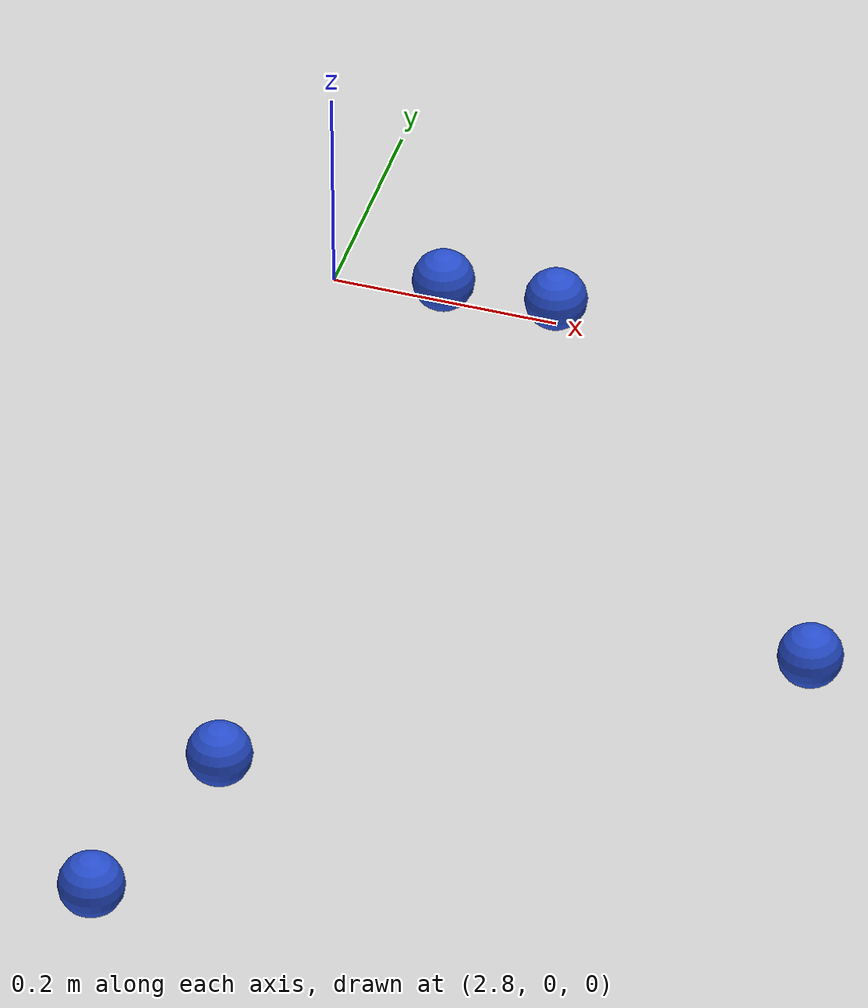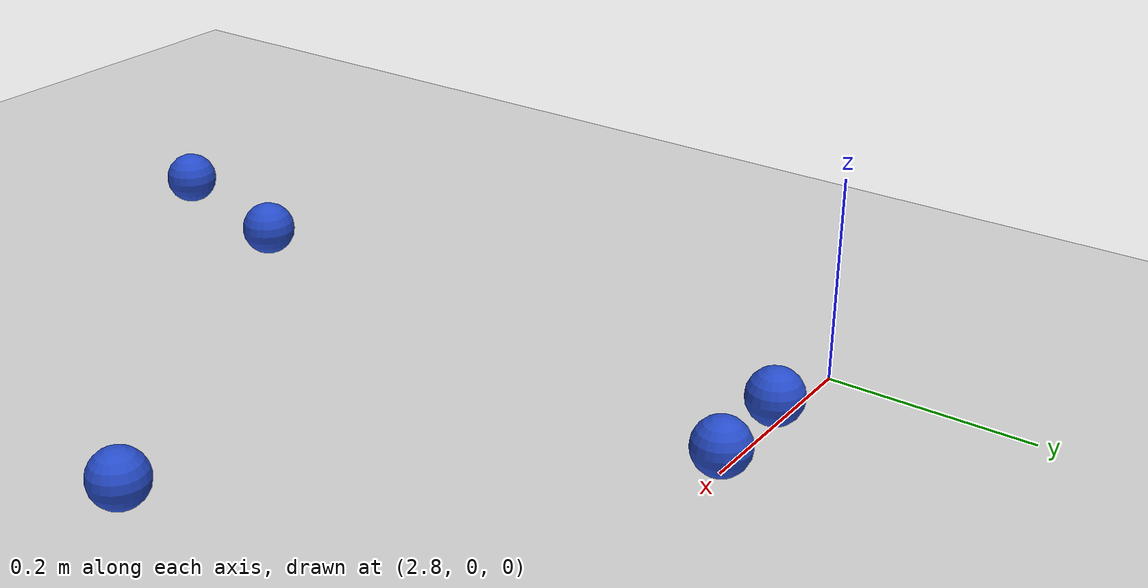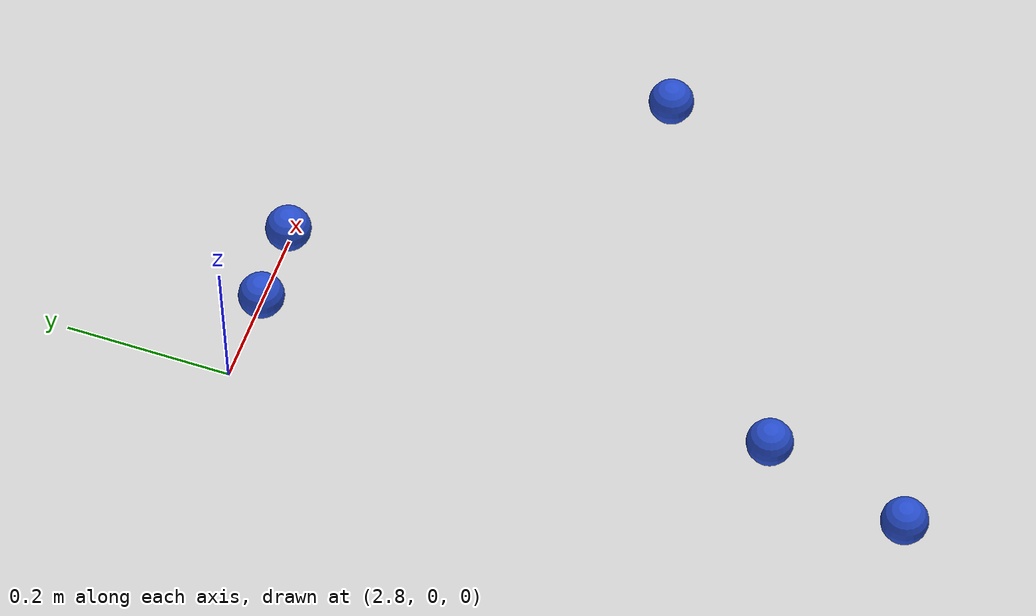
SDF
<sdf version="1.7">
 <world name="default">
  <model name="ground_plane">
   <static>1</static>
   <link name="link">
    <collision name="collision">
     <geometry><plane><normal>0 0 1</normal><size>100 100</size></plane></geometry>
     <surface>
      <contact><collide_bitmask>65535</collide_bitmask></contact>
      <friction><ode><mu>100</mu><mu2>50</mu2></ode></friction>
     </surface>
    </collision>
    <visual name="visual">
     <cast_shadows>0</cast_shadows>
     <geometry><plane><normal>0 0 1</normal><size>100 100</size></plane></geometry>
     <material>
      <script><uri>file://media/materials/scripts/gazebo.material</uri><name>Gazebo/Grey</name></script>
     </material>
    </visual>
   </link>
  </model>
  <model name="YellowBall">
   <link name="ball">
    <inertial>
     <mass>0.01</mass>
     <inertia>
      <ixx>3.02e-06</ixx>
      <ixy>0</ixy>
      <ixz>0</ixz>
      <iyy>3.02e-06</iyy>
      <iyz>0</iyz>
      <izz>3.02e-06</izz>
     </inertia>
    </inertial>
    <visual name="ball_visual">
     <geometry><sphere><radius>0.0275</radius></sphere></geometry>
     <material>
      <script><name>Gazebo/Blue</name><uri>file://media/materials/scripts/gazebo.material</uri></script>
      <shader type="pixel"><normal_map>__default__</normal_map></shader>
      <ambient>0.6 0.6 0 0</ambient>
      <diffuse>0.7 0.6 0.1 1</diffuse>
      <specular>0.7 1 0.8 1</specular>
      <emissive>0 0 0 1</emissive>
     </material>
    </visual>
    <collision name="ball_collision">
     <geometry><sphere><radius>0.0275</radius></sphere></geometry>
     <surface>
      <friction>
       <ode><mu>0.08</mu><mu2>0.08</mu2><fdir1>0 0 0</fdir1><slip1>0</slip1><slip2>0</slip2></ode>
       <torsional>
        <coefficient>1</coefficient>
        <patch_radius>0</patch_radius>
        <surface_radius>0</surface_radius>
        <use_patch_radius>1</use_patch_radius>
        <ode><slip>0</slip></ode>
       </torsional>
      </friction>
      <bounce><restitution_coefficient>0</restitution_coefficient><threshold>1e+06</threshold></bounce>
      <contact>
       <collide_without_contact>0</collide_without_contact>
       <collide_without_contact_bitmask>1</collide_without_contact_bitmask>
       <collide_bitmask>1</collide_bitmask>
       <ode>
        <soft_cfm>0</soft_cfm>
        <soft_erp>0.2</soft_erp>
        <kp>1e+13</kp>
        <kd>1</kd>
        <max_vel>0.01</max_vel>
        <min_depth>0</min_depth>
       </ode>
       <bullet>
        <split_impulse>1</split_impulse>
        <split_impulse_penetration_threshold>-0.01</split_impulse_penetration_threshold>
        <soft_cfm>0</soft_cfm>
        <soft_erp>0.2</soft_erp>
        <kp>1e+13</kp>
        <kd>1</kd>
       </bullet>
      </contact>
     </surface>
    </collision>
   </link>
   <static>0</static>
   <pose>3.32534 -0.37109 0.0275 0 -0 0</pose>
  </model>
  <model name="ball2_clone_clone">
   <link name="ball">
    <inertial>
     <mass>0.01</mass>
     <inertia>
      <ixx>3.025e-06</ixx>
      <ixy>0</ixy>
      <ixz>0</ixz>
      <iyy>3.025e-06</iyy>
      <iyz>0</iyz>
      <izz>3.025e-06</izz>
     </inertia>
    </inertial>
    <collision name="ball_collision">
     <geometry><sphere><radius>0.0275</radius></sphere></geometry>
     <surface><friction><ode><mu>0.08</mu><mu2>0.08</mu2></ode></friction></surface>
    </collision>
    <visual name="ball_visual">
     <geometry><sphere><radius>0.0275</radius></sphere></geometry>
     <material>
      <script><name>Gazebo/Blue</name><uri>file://media/materials/scripts/gazebo.material</uri></script>
     </material>
    </visual>
   </link>
   <pose>2.90006 -0.003891 0.0275 0 -0 0</pose>
  </model>
  <model name="YellowBall_clone_0">
   <link name="ball">
    <inertial>
     <mass>0.01</mass>
     <inertia>
      <ixx>3.02e-06</ixx>
      <ixy>0</ixy>
      <ixz>0</ixz>
      <iyy>3.02e-06</iyy>
      <iyz>0</iyz>
      <izz>3.02e-06</izz>
     </inertia>
    </inertial>
    <visual name="ball_visual">
     <geometry><sphere><radius>0.0275</radius></sphere></geometry>
     <material>
      <script><name>Gazebo/Blue</name><uri>file://media/materials/scripts/gazebo.material</uri></script>
      <shader type="pixel"><normal_map>__default__</normal_map></shader>
      <ambient>0.6 0.6 0 0</ambient>
      <diffuse>0.7 0.6 0.1 1</diffuse>
      <specular>0.7 1 0.8 1</specular>
      <emissive>0 0 0 1</emissive>
     </material>
    </visual>
    <collision name="ball_collision">
     <geometry><sphere><radius>0.0275</radius></sphere></geometry>
     <surface>
      <friction>
       <ode><mu>0.08</mu><mu2>0.08</mu2><fdir1>0 0 0</fdir1><slip1>0</slip1><slip2>0</slip2></ode>
       <torsional>
        <coefficient>1</coefficient>
        <patch_radius>0</patch_radius>
        <surface_radius>0</surface_radius>
        <use_patch_radius>1</use_patch_radius>
        <ode><slip>0</slip></ode>
       </torsional>
      </friction>
      <bounce><restitution_coefficient>0</restitution_coefficient><threshold>1e+06</threshold></bounce>
      <contact>
       <collide_without_contact>0</collide_without_contact>
       <collide_without_contact_bitmask>1</collide_without_contact_bitmask>
       <collide_bitmask>1</collide_bitmask>
       <ode>
        <soft_cfm>0</soft_cfm>
        <soft_erp>0.2</soft_erp>
        <kp>1e+13</kp>
        <kd>1</kd>
        <max_vel>0.01</max_vel>
        <min_depth>0</min_depth>
       </ode>
       <bullet>
        <split_impulse>1</split_impulse>
        <split_impulse_penetration_threshold>-0.01</split_impulse_penetration_threshold>
        <soft_cfm>0</soft_cfm>
        <soft_erp>0.2</soft_erp>
        <kp>1e+13</kp>
        <kd>1</kd>
       </bullet>
      </contact>
     </surface>
    </collision>
   </link>
   <static>0</static>
   <pose>2.8975 -0.621193 0.0275 0 -0 0</pose>
  </model>
  <model name="CyanBall_clone">
   <link name="ball">
    <inertial>
     <mass>0.01</mass>
     <inertia>
      <ixx>3.02e-06</ixx>
      <ixy>0</ixy>
      <ixz>0</ixz>
      <iyy>3.02e-06</iyy>
      <iyz>0</iyz>
      <izz>3.02e-06</izz>
     </inertia>
    </inertial>
    <visual name="ball_visual">
     <geometry><sphere><radius>0.0275</radius></sphere></geometry>
     <material>
      <script><name>Gazebo/Blue</name><uri>file://media/materials/scripts/gazebo.material</uri></script>
      <shader type="pixel"><normal_map>__default__</normal_map></shader>
      <ambient>0.1 0.8 0.8 0</ambient>
      <diffuse>0 0.6 0.6 1</diffuse>
      <specular>0.1 0.4 0.5 1</specular>
      <emissive>0 0 0 1</emissive>
     </material>
    </visual>
    <collision name="ball_collision">
     <geometry><sphere><radius>0.0275</radius></sphere></geometry>
     <surface>
      <friction>
       <ode><mu>0.08</mu><mu2>0.08</mu2><fdir1>0 0 0</fdir1><slip1>0</slip1><slip2>0</slip2></ode>
       <torsional>
        <coefficient>1</coefficient>
        <patch_radius>0</patch_radius>
        <surface_radius>0</surface_radius>
        <use_patch_radius>1</use_patch_radius>
        <ode><slip>0</slip></ode>
       </torsional>
      </friction>
      <bounce><restitution_coefficient>0</restitution_coefficient><threshold>1e+06</threshold></bounce>
      <contact>
       <collide_without_contact>0</collide_without_contact>
       <collide_without_contact_bitmask>1</collide_without_contact_bitmask>
       <collide_bitmask>1</collide_bitmask>
       <ode>
        <soft_cfm>0</soft_cfm>
        <soft_erp>0.2</soft_erp>
        <kp>1e+13</kp>
        <kd>1</kd>
        <max_vel>0.01</max_vel>
        <min_depth>0</min_depth>
       </ode>
       <bullet>
        <split_impulse>1</split_impulse>
        <split_impulse_penetration_threshold>-0.01</split_impulse_penetration_threshold>
        <soft_cfm>0</soft_cfm>
        <soft_erp>0.2</soft_erp>
        <kp>1e+13</kp>
        <kd>1</kd>
       </bullet>
      </contact>
     </surface>
    </collision>
   </link>
   <static>0</static>
   <pose>2.84641 -0.79343 0.0275 0 -0 0</pose>
  </model>
  <model name="CyanBall_clone_0">
   <link name="ball">
    <inertial>
     <mass>0.01</mass>
     <inertia>
      <ixx>3.02e-06</ixx>
      <ixy>0</ixy>
      <ixz>0</ixz>
      <iyy>3.02e-06</iyy>
      <iyz>0</iyz>
      <izz>3.02e-06</izz>
     </inertia>
    </inertial>
    <visual name="ball_visual">
     <geometry><sphere><radius>0.0275</radius></sphere></geometry>
     <material>
      <script><name>Gazebo/Blue</name><uri>file://media/materials/scripts/gazebo.material</uri></script>
      <shader type="pixel"><normal_map>__default__</normal_map></shader>
      <ambient>0.1 0.8 0.8 0</ambient>
      <diffuse>0 0.6 0.6 1</diffuse>
      <specular>0.1 0.4 0.5 1</specular>
      <emissive>0 0 0 1</emissive>
     </material>
    </visual>
    <collision name="ball_collision">
     <geometry><sphere><radius>0.0275</radius></sphere></geometry>
     <surface>
      <friction>
       <ode><mu>0.08</mu><mu2>0.08</mu2><fdir1>0 0 0</fdir1><slip1>0</slip1><slip2>0</slip2></ode>
       <torsional>
        <coefficient>1</coefficient>
        <patch_radius>0</patch_radius>
        <surface_radius>0</surface_radius>
        <use_patch_radius>1</use_patch_radius>
        <ode><slip>0</slip></ode>
       </torsional>
      </friction>
      <bounce><restitution_coefficient>0</restitution_coefficient><threshold>1e+06</threshold></bounce>
      <contact>
       <collide_without_contact>0</collide_without_contact>
       <collide_without_contact_bitmask>1</collide_without_contact_bitmask>
       <collide_bitmask>1</collide_bitmask>
       <ode>
        <soft_cfm>0</soft_cfm>
        <soft_erp>0.2</soft_erp>
        <kp>1e+13</kp>
        <kd>1</kd>
        <max_vel>0.01</max_vel>
        <min_depth>0</min_depth>
       </ode>
       <bullet>
        <split_impulse>1</split_impulse>
        <split_impulse_penetration_threshold>-0.01</split_impulse_penetration_threshold>
        <soft_cfm>0</soft_cfm>
        <soft_erp>0.2</soft_erp>
        <kp>1e+13</kp>
        <kd>1</kd>
       </bullet>
      </contact>
     </surface>
    </collision>
   </link>
   <static>0</static>
   <pose>3 0 0.0275 0 -0 0</pose>
  </model>
 </world>
</sdf>
